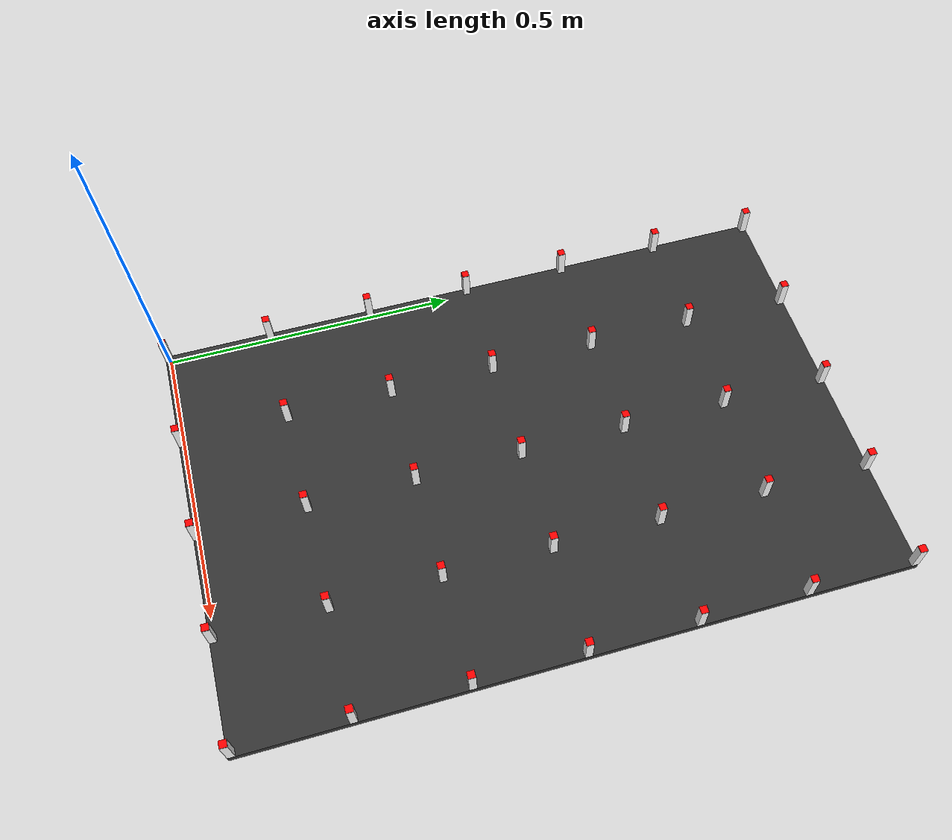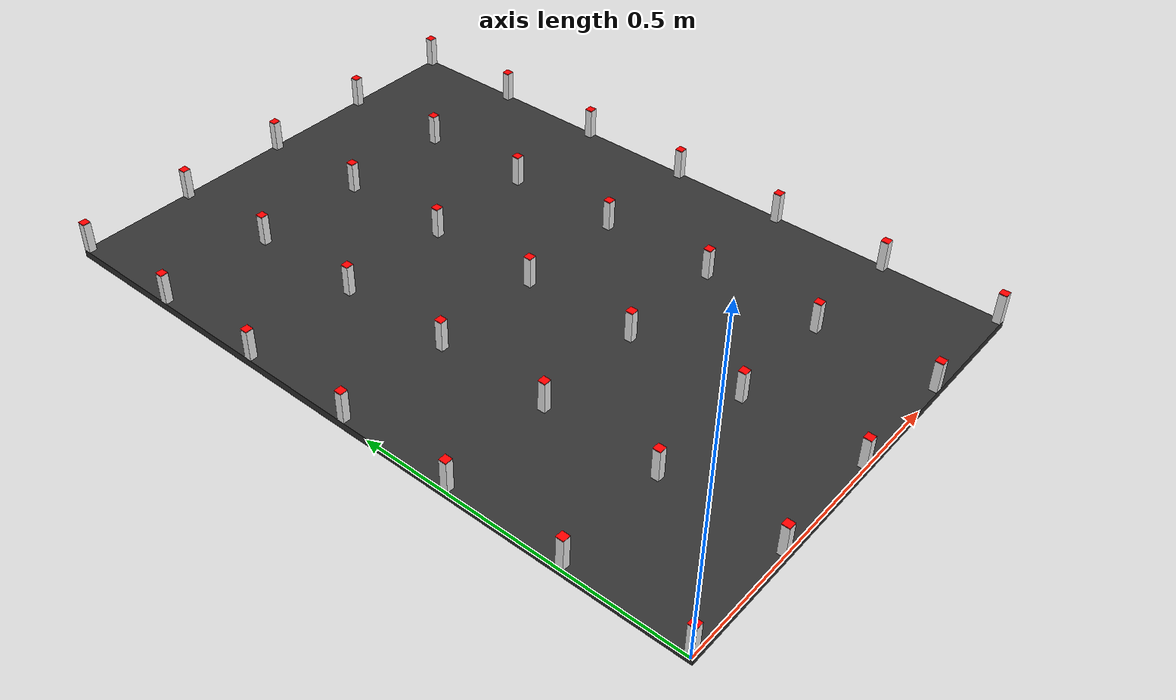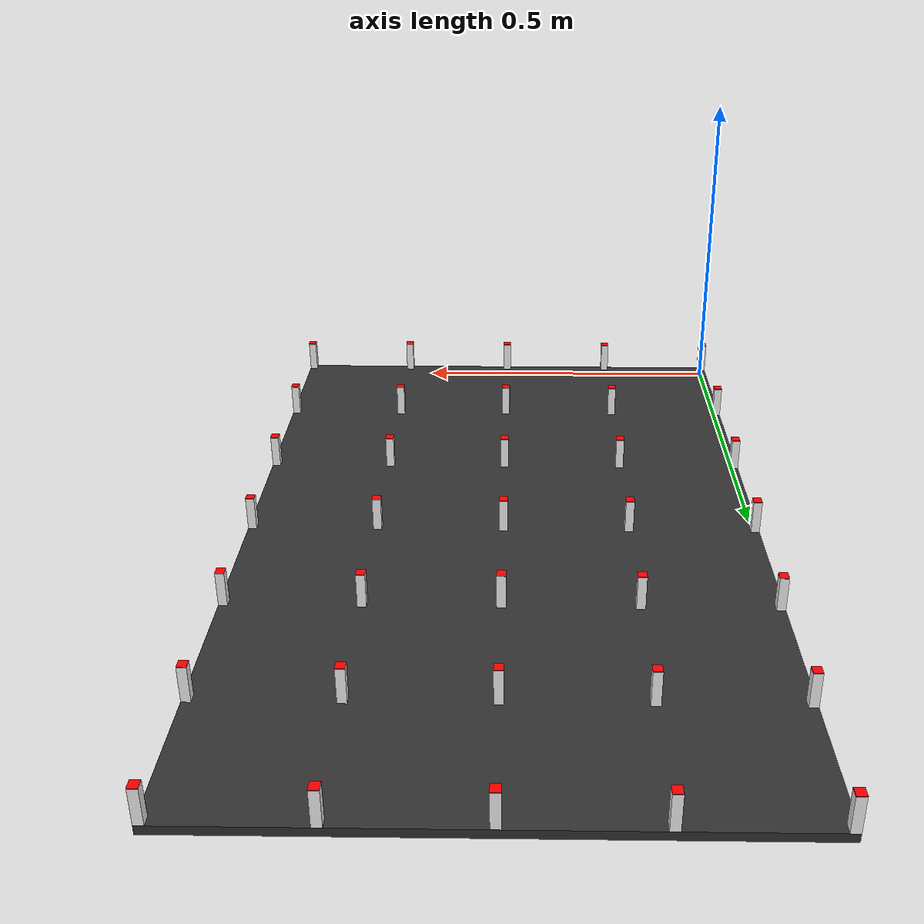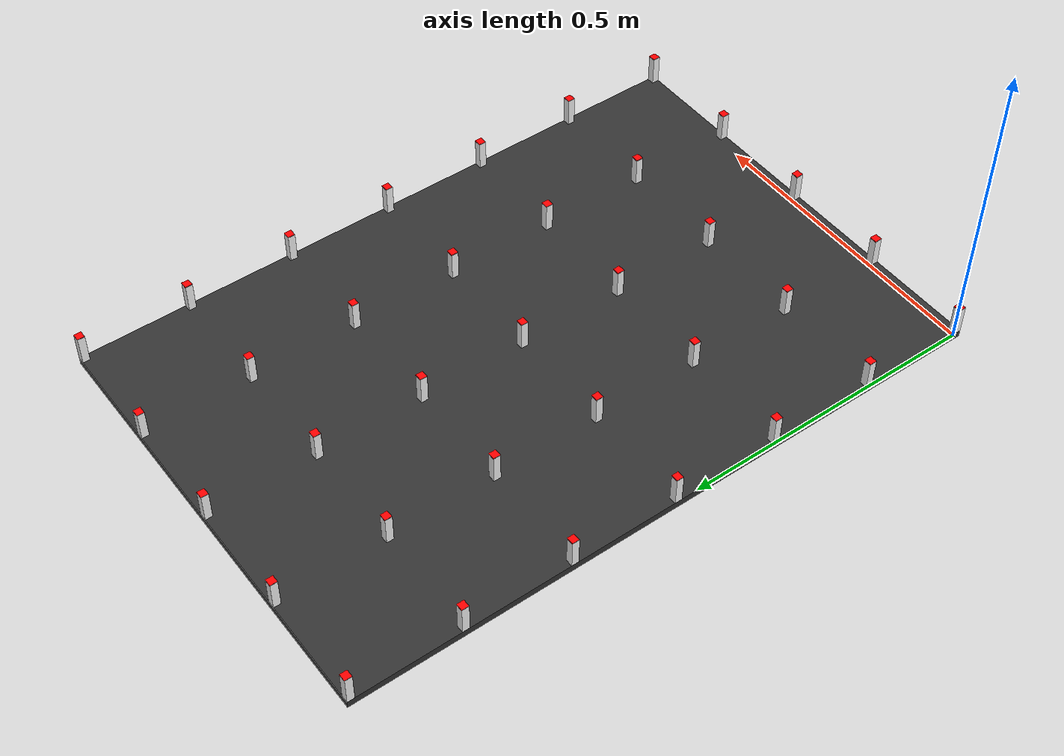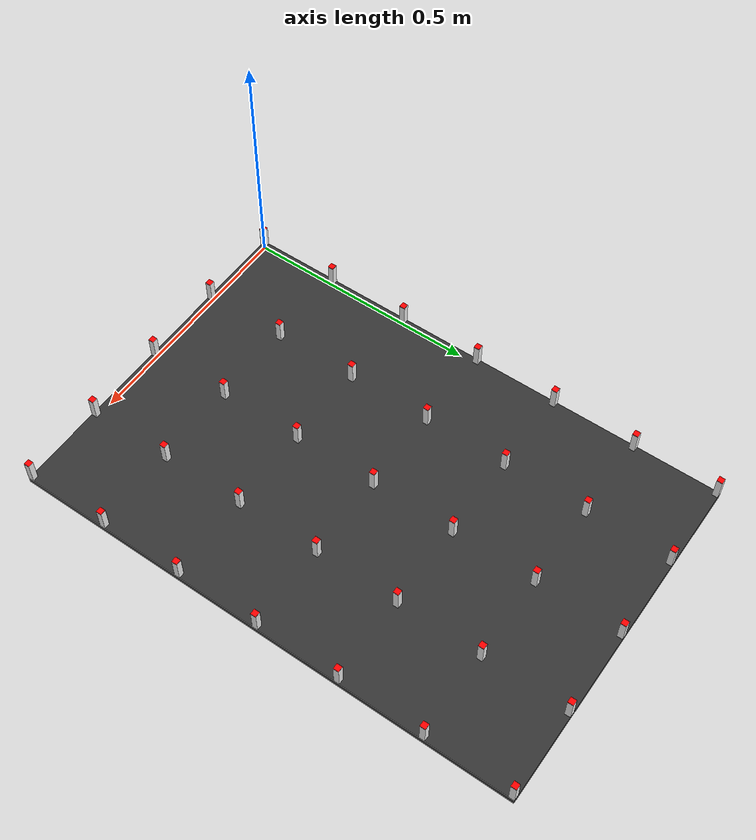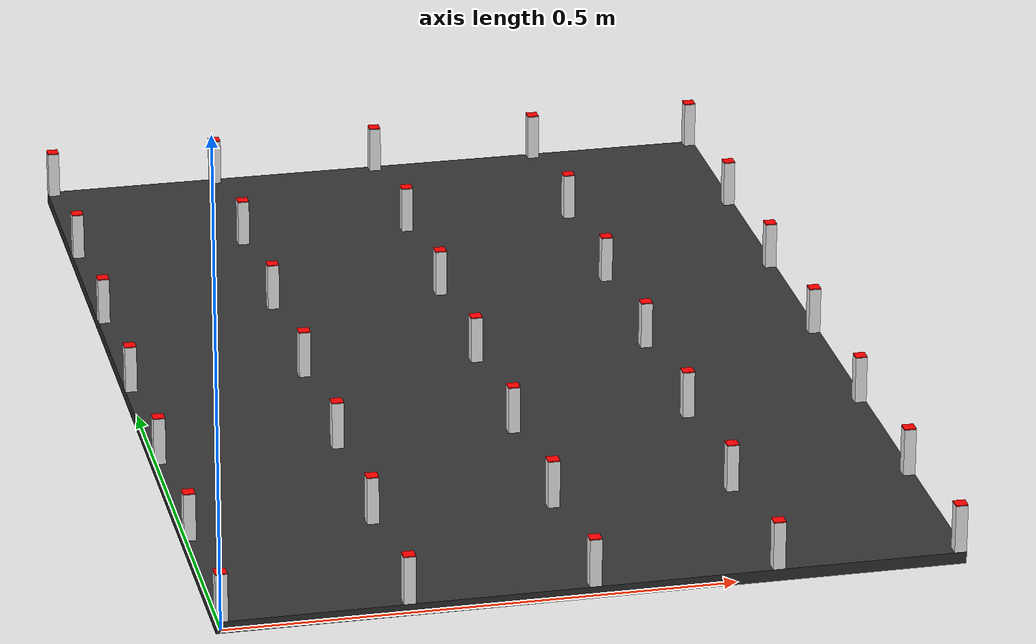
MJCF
<mujoco model="maze">
    <worldbody>
        <!--ベース板-->
        <body name="base_plate" pos="0.36 0.54 0.006">
        <geom type="box" mass="0.1" size="0.366 0.546 0.006" rgba="0.2 0.2 0.2 1" friction="0.0 0.0 0.0"/>
        </body>

        <!-- Column 1-->
        <body pos="0.0 0.0 0.037">
            <body pos="0 0 -0.0005">
                <geom type="box" mass="0.01" size="0.006 0.006 0.0245" rgba="1 1 1 1"/>
            </body>
            <!--柱上赤蓋-->
            <body pos="0 0 0.0245">
                <geom type="box" mass="0.01" size="0.006 0.006 0.0005" rgba="1 0 0 1"/>
            </body>
        </body>

        <!-- Column 2-->
        <body pos="0.18 0.0 0.037">
            <body pos="0 0 -0.0005">
                <geom type="box" mass="0.01" size="0.006 0.006 0.0245" rgba="1 1 1 1"/>
            </body>
            <!--柱上赤蓋-->
            <body pos="0 0 0.0245">
                <geom type="box" mass="0.01" size="0.006 0.006 0.0005" rgba="1 0 0 1"/>
            </body>
        </body>

        <!-- Column 3-->
        <body pos="0.36 0.0 0.037">
            <body pos="0 0 -0.0005">
                <geom type="box" mass="0.01" size="0.006 0.006 0.0245" rgba="1 1 1 1"/>
            </body>
            <!--柱上赤蓋-->
            <body pos="0 0 0.0245">
                <geom type="box" mass="0.01" size="0.006 0.006 0.0005" rgba="1 0 0 1"/>
            </body>
        </body>

        <!-- Column 4-->
        <body pos="0.54 0.0 0.037">
            <body pos="0 0 -0.0005">
                <geom type="box" mass="0.01" size="0.006 0.006 0.0245" rgba="1 1 1 1"/>
            </body>
            <!--柱上赤蓋-->
            <body pos="0 0 0.0245">
                <geom type="box" mass="0.01" size="0.006 0.006 0.0005" rgba="1 0 0 1"/>
            </body>
        </body>

        <!-- Column 5-->
        <body pos="0.72 0.0 0.037">
            <body pos="0 0 -0.0005">
                <geom type="box" mass="0.01" size="0.006 0.006 0.0245" rgba="1 1 1 1"/>
            </body>
            <!--柱上赤蓋-->
            <body pos="0 0 0.0245">
                <geom type="box" mass="0.01" size="0.006 0.006 0.0005" rgba="1 0 0 1"/>
            </body>
        </body>

        <!-- Column 6-->
        <body pos="0.0 0.18 0.037">
            <body pos="0 0 -0.0005">
                <geom type="box" mass="0.01" size="0.006 0.006 0.0245" rgba="1 1 1 1"/>
            </body>
            <!--柱上赤蓋-->
            <body pos="0 0 0.0245">
                <geom type="box" mass="0.01" size="0.006 0.006 0.0005" rgba="1 0 0 1"/>
            </body>
        </body>

        <!-- Column 7-->
        <body pos="0.18 0.18 0.037">
            <body pos="0 0 -0.0005">
                <geom type="box" mass="0.01" size="0.006 0.006 0.0245" rgba="1 1 1 1"/>
            </body>
            <!--柱上赤蓋-->
            <body pos="0 0 0.0245">
                <geom type="box" mass="0.01" size="0.006 0.006 0.0005" rgba="1 0 0 1"/>
            </body>
        </body>

        <!-- Column 8-->
        <body pos="0.36 0.18 0.037">
            <body pos="0 0 -0.0005">
                <geom type="box" mass="0.01" size="0.006 0.006 0.0245" rgba="1 1 1 1"/>
            </body>
            <!--柱上赤蓋-->
            <body pos="0 0 0.0245">
                <geom type="box" mass="0.01" size="0.006 0.006 0.0005" rgba="1 0 0 1"/>
            </body>
        </body>

        <!-- Column 9-->
        <body pos="0.54 0.18 0.037">
            <body pos="0 0 -0.0005">
                <geom type="box" mass="0.01" size="0.006 0.006 0.0245" rgba="1 1 1 1"/>
            </body>
            <!--柱上赤蓋-->
            <body pos="0 0 0.0245">
                <geom type="box" mass="0.01" size="0.006 0.006 0.0005" rgba="1 0 0 1"/>
            </body>
        </body>

        <!-- Column 10-->
        <body pos="0.72 0.18 0.037">
            <body pos="0 0 -0.0005">
                <geom type="box" mass="0.01" size="0.006 0.006 0.0245" rgba="1 1 1 1"/>
            </body>
            <!--柱上赤蓋-->
            <body pos="0 0 0.0245">
                <geom type="box" mass="0.01" size="0.006 0.006 0.0005" rgba="1 0 0 1"/>
            </body>
        </body>

        <!-- Column 11-->
        <body pos="0.0 0.36 0.037">
            <body pos="0 0 -0.0005">
                <geom type="box" mass="0.01" size="0.006 0.006 0.0245" rgba="1 1 1 1"/>
            </body>
            <!--柱上赤蓋-->
            <body pos="0 0 0.0245">
                <geom type="box" mass="0.01" size="0.006 0.006 0.0005" rgba="1 0 0 1"/>
            </body>
        </body>

        <!-- Column 12-->
        <body pos="0.18 0.36 0.037">
            <body pos="0 0 -0.0005">
                <geom type="box" mass="0.01" size="0.006 0.006 0.0245" rgba="1 1 1 1"/>
            </body>
            <!--柱上赤蓋-->
            <body pos="0 0 0.0245">
                <geom type="box" mass="0.01" size="0.006 0.006 0.0005" rgba="1 0 0 1"/>
            </body>
        </body>

        <!-- Column 13-->
        <body pos="0.36 0.36 0.037">
            <body pos="0 0 -0.0005">
                <geom type="box" mass="0.01" size="0.006 0.006 0.0245" rgba="1 1 1 1"/>
            </body>
            <!--柱上赤蓋-->
            <body pos="0 0 0.0245">
                <geom type="box" mass="0.01" size="0.006 0.006 0.0005" rgba="1 0 0 1"/>
            </body>
        </body>

        <!-- Column 14-->
        <body pos="0.54 0.36 0.037">
            <body pos="0 0 -0.0005">
                <geom type="box" mass="0.01" size="0.006 0.006 0.0245" rgba="1 1 1 1"/>
            </body>
            <!--柱上赤蓋-->
            <body pos="0 0 0.0245">
                <geom type="box" mass="0.01" size="0.006 0.006 0.0005" rgba="1 0 0 1"/>
            </body>
        </body>

        <!-- Column 15-->
        <body pos="0.72 0.36 0.037">
            <body pos="0 0 -0.0005">
                <geom type="box" mass="0.01" size="0.006 0.006 0.0245" rgba="1 1 1 1"/>
            </body>
            <!--柱上赤蓋-->
            <body pos="0 0 0.0245">
                <geom type="box" mass="0.01" size="0.006 0.006 0.0005" rgba="1 0 0 1"/>
            </body>
        </body>

        <!-- Column 16-->
        <body pos="0.0 0.54 0.037">
            <body pos="0 0 -0.0005">
                <geom type="box" mass="0.01" size="0.006 0.006 0.0245" rgba="1 1 1 1"/>
            </body>
            <!--柱上赤蓋-->
            <body pos="0 0 0.0245">
                <geom type="box" mass="0.01" size="0.006 0.006 0.0005" rgba="1 0 0 1"/>
            </body>
        </body>

        <!-- Column 17-->
        <body pos="0.18 0.54 0.037">
            <body pos="0 0 -0.0005">
                <geom type="box" mass="0.01" size="0.006 0.006 0.0245" rgba="1 1 1 1"/>
            </body>
            <!--柱上赤蓋-->
            <body pos="0 0 0.0245">
                <geom type="box" mass="0.01" size="0.006 0.006 0.0005" rgba="1 0 0 1"/>
            </body>
        </body>

        <!-- Column 18-->
        <body pos="0.36 0.54 0.037">
            <body pos="0 0 -0.0005">
                <geom type="box" mass="0.01" size="0.006 0.006 0.0245" rgba="1 1 1 1"/>
            </body>
            <!--柱上赤蓋-->
            <body pos="0 0 0.0245">
                <geom type="box" mass="0.01" size="0.006 0.006 0.0005" rgba="1 0 0 1"/>
            </body>
        </body>

        <!-- Column 19-->
        <body pos="0.54 0.54 0.037">
            <body pos="0 0 -0.0005">
                <geom type="box" mass="0.01" size="0.006 0.006 0.0245" rgba="1 1 1 1"/>
            </body>
            <!--柱上赤蓋-->
            <body pos="0 0 0.0245">
                <geom type="box" mass="0.01" size="0.006 0.006 0.0005" rgba="1 0 0 1"/>
            </body>
        </body>

        <!-- Column 20-->
        <body pos="0.72 0.54 0.037">
            <body pos="0 0 -0.0005">
                <geom type="box" mass="0.01" size="0.006 0.006 0.0245" rgba="1 1 1 1"/>
            </body>
            <!--柱上赤蓋-->
            <body pos="0 0 0.0245">
                <geom type="box" mass="0.01" size="0.006 0.006 0.0005" rgba="1 0 0 1"/>
            </body>
        </body>

        <!-- Column 21-->
        <body pos="0.0 0.72 0.037">
            <body pos="0 0 -0.0005">
                <geom type="box" mass="0.01" size="0.006 0.006 0.0245" rgba="1 1 1 1"/>
            </body>
            <!--柱上赤蓋-->
            <body pos="0 0 0.0245">
                <geom type="box" mass="0.01" size="0.006 0.006 0.0005" rgba="1 0 0 1"/>
            </body>
        </body>

        <!-- Column 22-->
        <body pos="0.18 0.72 0.037">
            <body pos="0 0 -0.0005">
                <geom type="box" mass="0.01" size="0.006 0.006 0.0245" rgba="1 1 1 1"/>
            </body>
            <!--柱上赤蓋-->
            <body pos="0 0 0.0245">
                <geom type="box" mass="0.01" size="0.006 0.006 0.0005" rgba="1 0 0 1"/>
            </body>
        </body>

        <!-- Column 23-->
        <body pos="0.36 0.72 0.037">
            <body pos="0 0 -0.0005">
                <geom type="box" mass="0.01" size="0.006 0.006 0.0245" rgba="1 1 1 1"/>
            </body>
            <!--柱上赤蓋-->
            <body pos="0 0 0.0245">
                <geom type="box" mass="0.01" size="0.006 0.006 0.0005" rgba="1 0 0 1"/>
            </body>
        </body>

        <!-- Column 24-->
        <body pos="0.54 0.72 0.037">
            <body pos="0 0 -0.0005">
                <geom type="box" mass="0.01" size="0.006 0.006 0.0245" rgba="1 1 1 1"/>
            </body>
            <!--柱上赤蓋-->
            <body pos="0 0 0.0245">
                <geom type="box" mass="0.01" size="0.006 0.006 0.0005" rgba="1 0 0 1"/>
            </body>
        </body>

        <!-- Column 25-->
        <body pos="0.72 0.72 0.037">
            <body pos="0 0 -0.0005">
                <geom type="box" mass="0.01" size="0.006 0.006 0.0245" rgba="1 1 1 1"/>
            </body>
            <!--柱上赤蓋-->
            <body pos="0 0 0.0245">
                <geom type="box" mass="0.01" size="0.006 0.006 0.0005" rgba="1 0 0 1"/>
            </body>
        </body>

        <!-- Column 26-->
        <body pos="0.0 0.8999999999999999 0.037">
            <body pos="0 0 -0.0005">
                <geom type="box" mass="0.01" size="0.006 0.006 0.0245" rgba="1 1 1 1"/>
            </body>
            <!--柱上赤蓋-->
            <body pos="0 0 0.0245">
                <geom type="box" mass="0.01" size="0.006 0.006 0.0005" rgba="1 0 0 1"/>
            </body>
        </body>

        <!-- Column 27-->
        <body pos="0.18 0.8999999999999999 0.037">
            <body pos="0 0 -0.0005">
                <geom type="box" mass="0.01" size="0.006 0.006 0.0245" rgba="1 1 1 1"/>
            </body>
            <!--柱上赤蓋-->
            <body pos="0 0 0.0245">
                <geom type="box" mass="0.01" size="0.006 0.006 0.0005" rgba="1 0 0 1"/>
            </body>
        </body>

        <!-- Column 28-->
        <body pos="0.36 0.8999999999999999 0.037">
            <body pos="0 0 -0.0005">
                <geom type="box" mass="0.01" size="0.006 0.006 0.0245" rgba="1 1 1 1"/>
            </body>
            <!--柱上赤蓋-->
            <body pos="0 0 0.0245">
                <geom type="box" mass="0.01" size="0.006 0.006 0.0005" rgba="1 0 0 1"/>
            </body>
        </body>

        <!-- Column 29-->
        <body pos="0.54 0.8999999999999999 0.037">
            <body pos="0 0 -0.0005">
                <geom type="box" mass="0.01" size="0.006 0.006 0.0245" rgba="1 1 1 1"/>
            </body>
            <!--柱上赤蓋-->
            <body pos="0 0 0.0245">
                <geom type="box" mass="0.01" size="0.006 0.006 0.0005" rgba="1 0 0 1"/>
            </body>
        </body>

        <!-- Column 30-->
        <body pos="0.72 0.8999999999999999 0.037">
            <body pos="0 0 -0.0005">
                <geom type="box" mass="0.01" size="0.006 0.006 0.0245" rgba="1 1 1 1"/>
            </body>
            <!--柱上赤蓋-->
            <body pos="0 0 0.0245">
                <geom type="box" mass="0.01" size="0.006 0.006 0.0005" rgba="1 0 0 1"/>
            </body>
        </body>

        <!-- Column 31-->
        <body pos="0.0 1.08 0.037">
            <body pos="0 0 -0.0005">
                <geom type="box" mass="0.01" size="0.006 0.006 0.0245" rgba="1 1 1 1"/>
            </body>
            <!--柱上赤蓋-->
            <body pos="0 0 0.0245">
                <geom type="box" mass="0.01" size="0.006 0.006 0.0005" rgba="1 0 0 1"/>
            </body>
        </body>

        <!-- Column 32-->
        <body pos="0.18 1.08 0.037">
            <body pos="0 0 -0.0005">
                <geom type="box" mass="0.01" size="0.006 0.006 0.0245" rgba="1 1 1 1"/>
            </body>
            <!--柱上赤蓋-->
            <body pos="0 0 0.0245">
                <geom type="box" mass="0.01" size="0.006 0.006 0.0005" rgba="1 0 0 1"/>
            </body>
        </body>

        <!-- Column 33-->
        <body pos="0.36 1.08 0.037">
            <body pos="0 0 -0.0005">
                <geom type="box" mass="0.01" size="0.006 0.006 0.0245" rgba="1 1 1 1"/>
            </body>
            <!--柱上赤蓋-->
            <body pos="0 0 0.0245">
                <geom type="box" mass="0.01" size="0.006 0.006 0.0005" rgba="1 0 0 1"/>
            </body>
        </body>

        <!-- Column 34-->
        <body pos="0.54 1.08 0.037">
            <body pos="0 0 -0.0005">
                <geom type="box" mass="0.01" size="0.006 0.006 0.0245" rgba="1 1 1 1"/>
            </body>
            <!--柱上赤蓋-->
            <body pos="0 0 0.0245">
                <geom type="box" mass="0.01" size="0.006 0.006 0.0005" rgba="1 0 0 1"/>
            </body>
        </body>

        <!-- Column 35-->
        <body pos="0.72 1.08 0.037">
            <body pos="0 0 -0.0005">
                <geom type="box" mass="0.01" size="0.006 0.006 0.0245" rgba="1 1 1 1"/>
            </body>
            <!--柱上赤蓋-->
            <body pos="0 0 0.0245">
                <geom type="box" mass="0.01" size="0.006 0.006 0.0005" rgba="1 0 0 1"/>
            </body>
        </body>
    </worldbody>
</mujoco>
